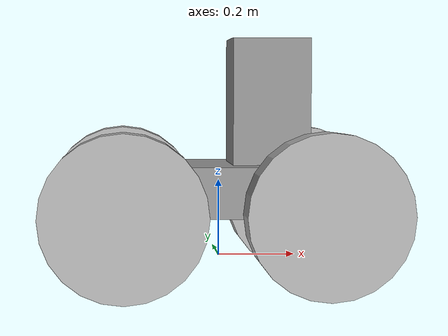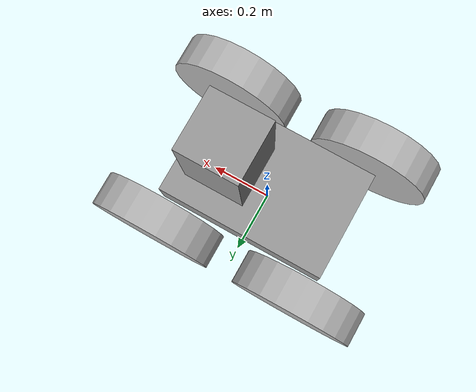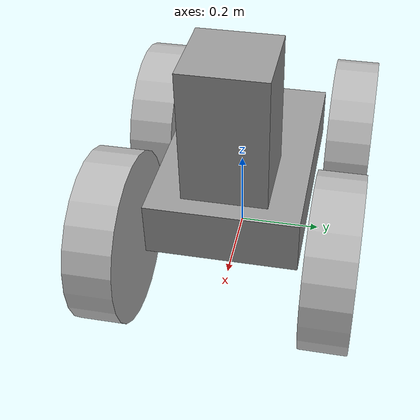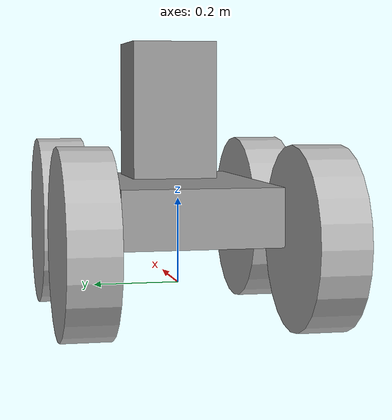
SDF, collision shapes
<?xml version="1.0"?>
<sdf version="1.6">
  <model name="coro_allie_sensor_config_1">
    <pose>0 0 0.1275 0 0 0</pose>
    <enable_wind>1</enable_wind>
    <link name="base_link">
      <inertial>
        <pose>0 0 0.09 0 0 0</pose>
        <mass>26.6</mass>
        <inertia>
          <ixx>0.387</ixx>
          <iyy>0.790</iyy>
          <izz>0.962</izz>
        </inertia>
      </inertial>

      <collision name="chassis_collision">
        <pose>0 0 0.05 0 0 0</pose>
        <geometry>
          <box>
            <size>0.555 0.355 0.13</size>
          </box>
        </geometry>
      </collision>
      <collision name="tower_collision">
        <pose>0.13 0 0.27 0 0 0</pose>
        <geometry>
          <box>
            <size>0.2 0.2 0.34</size>
          </box>
        </geometry>
      </collision>

      <visual name="chassis_main_visual">
        <pose>0 0 0.05 0 0 0</pose>
        <geometry>
          <box>
            <size>0.555 0.355 0.13</size>
          </box>
        </geometry>
        <material>
          <ambient>0.6 0.6 0.6 1.0</ambient>
          <diffuse>0.6 0.6 0.6 1.0</diffuse>
        </material>
      </visual>

      <visual name="emergency_stop_bottom_visual">
        <pose>0.2 0.15 0.125 0 0 0</pose>
        <geometry>
          <cylinder>
            <length>0.015</length>
            <radius>0.015</radius>
          </cylinder>
        </geometry>
        <material>
          <ambient>0.7059 0.7059 0.7059 1.0</ambient>
          <diffuse>0.7059 0.7059 0.7059 1.0</diffuse>
        </material>
      </visual>
      <visual name="emergency_stop_top_visual">
        <pose>0.2 0.15 0.135 0 0 0</pose>
        <geometry>
          <cylinder>
            <length>0.005</length>
            <radius>0.02</radius>
          </cylinder>
        </geometry>
        <material>
          <ambient>1.0 0.0 0.0 1.0</ambient>
          <diffuse>1.0 0.0 0.0 1.0</diffuse>
        </material>
      </visual>

      <visual name="wheel_mount_front_visual">
        <pose>0.249 0 0.011 0 0 0</pose>
        <geometry>
          <box>
            <size>0.05 0.5 0.05</size>
          </box>
        </geometry>
        <material>
          <ambient>0.6 0.6 0.6 1.0</ambient>
          <diffuse>0.6 0.6 0.6 1.0</diffuse>
        </material>
      </visual>
      <visual name="wheel_mount_rear_visual">
        <pose>-0.249 0 0.011 0 0 0</pose>
        <geometry>
          <box>
            <size>0.05 0.5 0.05</size>
          </box>
        </geometry>
        <material>
          <ambient>0.6 0.6 0.6 1.0</ambient>
          <diffuse>0.6 0.6 0.6 1.0</diffuse>
        </material>
      </visual>

      <visual name="plate1_visual">
        <pose>0.13 0 0.42 0 0 0</pose>
        <geometry>
          <box>
            <size>0.2 0.2 0.005</size>
          </box>
        </geometry>
        <material>
          <ambient>0.7843 0.7843 0.7843 1.0</ambient>
          <diffuse>0.7843 0.7843 0.7843 1.0</diffuse>
        </material>
      </visual>

      <visual name="plate2_visual">
        <pose>0.13 0 0.31 0 0 0</pose>
        <geometry>
          <box>
            <size>0.2 0.2 0.005</size>
          </box>
        </geometry>
        <material>
          <ambient>0.7843 0.7843 0.7843 1.0</ambient>
          <diffuse>0.7843 0.7843 0.7843 1.0</diffuse>
        </material>
      </visual>

      <visual name="plate3_visual">
        <pose>0.13 0 0.12 0 0 0</pose>
        <geometry>
          <box>
            <size>0.2 0.2 0.005</size>
          </box>
        </geometry>
        <material>
          <ambient>0.9412 0.9412 0.9412 1.0</ambient>
          <diffuse>0.9412 0.9412 0.9412 1.0</diffuse>
        </material>
      </visual>

      <visual name="beam1_visual">
        <pose>0.221 0.091 0.27 0 0 0</pose>
        <geometry>
          <box>
            <size>0.02 0.02 0.3</size>
          </box>
        </geometry>
        <material>
          <ambient>0.7843 0.7843 0.7843 1.0</ambient>
          <diffuse>0.7843 0.7843 0.7843 1.0</diffuse>
        </material>
      </visual>
      <visual name="beam2_visual">
        <pose>0.221 -0.091 0.27 0 0 0</pose>
        <geometry>
          <box>
            <size>0.02 0.02 0.3</size>
          </box>
        </geometry>
        <material>
          <ambient>0.7843 0.7843 0.7843 1.0</ambient>
          <diffuse>0.7843 0.7843 0.7843 1.0</diffuse>
        </material>
      </visual>
      <visual name="beam3_visual">
        <pose>0.039 0.091 0.27 0 0 0</pose>
        <geometry>
          <box>
            <size>0.02 0.02 0.3</size>
          </box>
        </geometry>
        <material>
          <ambient>0.7843 0.7843 0.7843 1.0</ambient>
          <diffuse>0.7843 0.7843 0.7843 1.0</diffuse>
        </material>
      </visual>
      <visual name="beam4_visual">
        <pose>0.039 -0.091 0.27 0 0 0</pose>
        <geometry>
          <box>
            <size>0.02 0.02 0.3</size>
          </box>
        </geometry>
        <material>
          <ambient>0.7843 0.7843 0.7843 1.0</ambient>
          <diffuse>0.7843 0.7843 0.7843 1.0</diffuse>
        </material>
      </visual>

      <visual name="d435i_realsense_camera_visual">
        <pose>0.19 0 0.393 0 0.52 0</pose>
        <geometry>
          <mesh>
            <scale>0.001 0.001 0.001</scale>
            <uri>../../meshes/allie/visual/realsense_d435.dae</uri>
          </mesh>
        </geometry>
      </visual>

      <visual name="vlp16_visual1">
        <pose>0.13 0 0.312 0 -0 0</pose>
        <geometry>
          <mesh>
            <scale>1 1 1</scale>
            <uri>../../meshes/allie/visual/VLP16_base_1.dae</uri>
          </mesh>
        </geometry>
      </visual>
      <visual name="vlp_visual2">
        <pose>0.13 0 0.312 0 -0 0</pose>
        <geometry>
          <mesh>
            <scale>1 1 1</scale>
            <uri>../../meshes/allie/visual/VLP16_base_2.dae</uri>
          </mesh>
        </geometry>
      </visual>
      <visual name="vlp_visual3">
        <pose>0.13 0 0.312 0 -0 0</pose>
        <geometry>
          <mesh>
            <scale>1 1 1</scale>
            <uri>../../meshes/allie/visual/VLP16_scan.dae</uri>
          </mesh>
        </geometry>
      </visual>

      <!-- MS-IMU3025 -->
      <sensor name="imu_sensor" type="imu">
        <always_on>1</always_on>
        <update_rate>50</update_rate>
        <imu>
                    <enable_orientation>0</enable_orientation>
                    <angular_velocity>
                        <x>
                            <noise type="gaussian">
                                <mean>0</mean>
                                <stddev>0.009</stddev>
                                <bias_mean>0.00075</bias_mean>
                                <bias_stddev>0.005</bias_stddev>
                                <dynamic_bias_stddev>0.00002</dynamic_bias_stddev>
                                <dynamic_bias_correlation_time>400.0</dynamic_bias_correlation_time>
                                <precision>0.00025</precision>
                            </noise>
                        </x>
                        <y>
                            <noise type="gaussian">
                                <mean>0</mean>
                                <stddev>0.009</stddev>
                                <bias_mean>0.00075</bias_mean>
                                <bias_stddev>0.005</bias_stddev>
                                <dynamic_bias_stddev>0.00002</dynamic_bias_stddev>
                                <dynamic_bias_correlation_time>400.0</dynamic_bias_correlation_time>
                                <precision>0.00025</precision>
                            </noise>
                        </y>
                        <z>
                            <noise type="gaussian">
                                <mean>0</mean>
                                <stddev>0.009</stddev>
                                <bias_mean>0.00075</bias_mean>
                                <bias_stddev>0.005</bias_stddev>
                                <dynamic_bias_stddev>0.00002</dynamic_bias_stddev>
                                <dynamic_bias_correlation_time>400.0</dynamic_bias_correlation_time>
                                <precision>0.00025</precision>
                            </noise>
                        </z>
                    </angular_velocity>
                    <linear_acceleration>
                        <x>
                            <noise type="gaussian">
                                <mean>0</mean>
                                <stddev>0.021</stddev>
                                <bias_mean>0.05</bias_mean>
                                <bias_stddev>0.0075</bias_stddev>
                                <dynamic_bias_stddev>0.000375</dynamic_bias_stddev>
                                <dynamic_bias_correlation_time>175.0</dynamic_bias_correlation_time>
                                <precision>0.005</precision>
                            </noise>
                        </x>
                        <y>
                            <noise type="gaussian">
                                <mean>0</mean>
                                <stddev>0.021</stddev>
                                <bias_mean>0.05</bias_mean>
                                <bias_stddev>0.0075</bias_stddev>
                                <dynamic_bias_stddev>0.000375</dynamic_bias_stddev>
                                <dynamic_bias_correlation_time>175.0</dynamic_bias_correlation_time>
                                <precision>0.005</precision>
                            </noise>
                        </y>
                        <z>
                            <noise type="gaussian">
                                <mean>0</mean>
                                <stddev>0.021</stddev>
                                <bias_mean>0.05</bias_mean>
                                <bias_stddev>0.0075</bias_stddev>
                                <dynamic_bias_stddev>0.000375</dynamic_bias_stddev>
                                <dynamic_bias_correlation_time>175.0</dynamic_bias_correlation_time>
                                <precision>0.005</precision>
                            </noise>
                        </z>
                    </linear_acceleration>
                </imu>
      </sensor>
      <!-- Based on Intel realsense D435 (intrinsics and distortion not modeled)-->
      <sensor name="rgbd_front" type="rgbd_camera">
        <pose>0.21 0 0.393 0 0.52 0</pose>
        <always_on>1</always_on>
        <update_rate>30</update_rate>
        <camera name="rgbd_front">
          <horizontal_fov>1.50098</horizontal_fov>
          <lens>
            <intrinsics>
              <!-- fx = fy = width / ( 2 * tan (hfov / 2 ) ) -->
              <fx>343.159</fx>
              <fy>343.159</fy>
              <!-- cx = ( width - 1 ) / 2 -->
              <cx>319.5</cx>
              <!-- cy = ( height - 1 ) / 2 -->
              <cy>179.5</cy>
              <s>0</s>
            </intrinsics>
          </lens>
          <distortion>
            <k1>0.0</k1>
            <k2>0.0</k2>
            <k3>0.0</k3>
            <p1>0.0</p1>
            <p2>0.0</p2>
            <center>0.5 0.5</center>
          </distortion>
          <image>
            <width>640</width>
            <height>360</height>
            <format>R8G8B8</format>
          </image>
          <clip>
            <near>0.01</near>
            <far>300</far>
          </clip>
          <depth_camera>
            <clip>
              <near>0.1</near>
              <far>10</far>
            </clip>
          </depth_camera>
          <noise>
            <type>gaussian</type>
            <mean>0</mean>
            <stddev>0.007</stddev>
          </noise>
        </camera>
      </sensor>
      <sensor name="front_laser" type="gpu_lidar">
        <visualize>0</visualize>
        <update_rate>10</update_rate>
        <lidar>
          <scan>
            <horizontal>
              <samples>1800</samples>
              <resolution>1</resolution>
              <min_angle>-3.1459</min_angle>
              <max_angle>3.1459</max_angle>
            </horizontal>
            <vertical>
              <samples>16</samples>
              <resolution>1</resolution>
              <min_angle>-0.261799</min_angle>
              <max_angle>0.261799</max_angle>
            </vertical>
          </scan>
          <range>
            <min>0.05</min>
            <max>100</max>
            <resolution>0.01</resolution>
          </range>
          <noise>
            <type>gaussian</type>
            <mean>0</mean>
            <stddev>0.01</stddev>
          </noise>
        </lidar>
        <pose frame="">0.13 0 0.35 0 -0 0</pose>
      </sensor>

      <visual name="light_front_visual">
        <pose>0.22 0 0.442 0 0 0</pose>
        <geometry>
          <box>
            <size>0.04 0.13 0.04</size>
          </box>
        </geometry>
        <material>
          <ambient>0.0 0.0 0.0 1.0</ambient>
          <diffuse>0.0 0.0 0.0 1.0</diffuse>
        </material>
      </visual>
      <light name="light_front" type="spot">
        <pose>0.25 0 0.44 0 -1.5707963267948966 0</pose>
        <attenuation>
          <range>25</range>
          <linear>0</linear>
          <constant>0.1</constant>
          <quadratic>0.005</quadratic>
        </attenuation>
        <diffuse>0.8 0.8 0.5 1.0</diffuse>
        <specular>0.8 0.8 0.5 1</specular>
        <spot>
          <inner_angle>1.571</inner_angle>
          <outer_angle>2.1</outer_angle>
          <falloff>1</falloff>
        </spot>
        <direction>1 0 0</direction>
        <cast_shadows>1</cast_shadows>
      </light>

      <visual name="light_rear_visual">
        <pose>0.04 0 0.44 0 0 0</pose>
        <geometry>
          <box>
            <size>0.04 0.12 0.04</size>
          </box>
        </geometry>
        <material>
          <ambient>0.0 0.0 0.0 1.0</ambient>
          <diffuse>0.0 0.0 0.0 1.0</diffuse>
        </material>
      </visual>
      <light name="light_rear" type="spot">
        <pose>0.01 0 0.442 0 1.5707963267948966 0</pose>
        <attenuation>
          <range>25</range>
          <linear>0</linear>
          <constant>0.1</constant>
          <quadratic>0.005</quadratic>
        </attenuation>
        <diffuse>0.8 0.8 0.5 1.0</diffuse>
        <specular>0.8 0.8 0.5 1</specular>
        <spot>
          <inner_angle>1.571</inner_angle>
          <outer_angle>2.1</outer_angle>
          <falloff>1</falloff>
        </spot>
        <direction>1 0 0</direction>
        <cast_shadows>1</cast_shadows>
      </light>

      <visual name="light_left_visual">
        <pose>0.13 0.09 0.442 0 0 0</pose>
        <geometry>
          <box>
            <size>0.12 0.04 0.04</size>
          </box>
        </geometry>
        <material>
          <ambient>0.0 0.0 0.0 1.0</ambient>
          <diffuse>0.0 0.0 0.0 1.0</diffuse>
        </material>
      </visual>
      <light name="light_left" type="spot">
        <pose>0.13 0.12 0.44 1.5707963267948966 0 0</pose>
        <attenuation>
          <range>25</range>
          <linear>0</linear>
          <constant>0.1</constant>
          <quadratic>0.005</quadratic>
        </attenuation>
        <diffuse>0.8 0.8 0.5 1.0</diffuse>
        <specular>0.8 0.8 0.5 1</specular>
        <spot>
          <inner_angle>1.571</inner_angle>
          <outer_angle>2.1</outer_angle>
          <falloff>1</falloff>
        </spot>
        <direction>1 0 0</direction>
        <cast_shadows>1</cast_shadows>
      </light>

      <visual name="light_right_visual">
        <pose>0.13 -0.09 0.442 0 0 0</pose>
        <geometry>
          <box>
            <size>0.12 0.04 0.04</size>
          </box>
        </geometry>
        <material>
          <ambient>0.0 0.0 0.0 1.0</ambient>
          <diffuse>0.0 0.0 0.0 1.0</diffuse>
        </material>
      </visual>
      <light name="light_right" type="spot">
        <pose>0.13 -0.12 0.44 -1.5707963267948966 0 0</pose>
        <attenuation>
          <range>25</range>
          <linear>0</linear>
          <constant>0.1</constant>
          <quadratic>0.005</quadratic>
        </attenuation>
        <diffuse>0.8 0.8 0.5 1.0</diffuse>
        <specular>0.8 0.8 0.5 1</specular>
        <spot>
          <inner_angle>1.571</inner_angle>
          <outer_angle>2.1</outer_angle>
          <falloff>1</falloff>
        </spot>
        <direction>1 0 0</direction>
        <cast_shadows>1</cast_shadows>
      </light>
    </link>

    <link name="front_left_wheel">
      <pose>0.25 0.255 0 0 0 0</pose>
      <inertial>
        <mass>5.124</mass>
        <inertia>
          <ixx>0.0576</ixx>
          <iyy>0.105</iyy>
          <izz>0.0576</izz>
        </inertia>
      </inertial>
      <collision name="front_left_wheel_collision">
        <pose>0 0 0 -1.5707963267948966 0 0</pose>
        <geometry>
          <cylinder>
            <length>0.11</length>
            <radius>0.205</radius>
          </cylinder>
        </geometry>
        <surface>
          <friction>
            <ode>
              <mu>0.5</mu>
              <mu2>1</mu2>
              <slip1>0.0016</slip1>
              <slip2>0</slip2>
              <fdir1>0 0 1</fdir1>
            </ode>
          </friction>
        </surface>
      </collision>
      <visual name="front_left_wheel_tire_visual">
        <pose>0 0 0 0 0 0</pose>
        <geometry>
          <mesh>
            <uri>../../meshes/allie/visual/wheel.dae</uri>
            <scale>1.18 1.0 1.18</scale>
          </mesh>
        </geometry>
      </visual>
    </link>

    <link name="front_right_wheel">
      <pose>0.25 -0.255 0 0 0 0</pose>
      <inertial>
        <mass>5.124</mass>
        <inertia>
          <ixx>0.0576</ixx>
          <iyy>0.105</iyy>
          <izz>0.0576</izz>
        </inertia>
      </inertial>
      <collision name="front_right_wheel_collision">
        <pose>0 0 0 1.5707963267948966 0 0</pose>
        <geometry>
          <cylinder>
            <length>0.11</length>
            <radius>0.205</radius>
          </cylinder>
        </geometry>
        <surface>
          <friction>
            <ode>
              <mu>0.5</mu>
              <mu2>1</mu2>
              <slip1>0.0016</slip1>
              <slip2>0</slip2>
              <fdir1>0 0 1</fdir1>
            </ode>
          </friction>
        </surface>
      </collision>
      <visual name="front_right_wheel_tire_visual">
        <pose>0 0 0 0 0 0</pose>
        <geometry>
          <mesh>
            <uri>../../meshes/allie/visual/wheel.dae</uri>
            <scale>1.18 1.0 1.18</scale>
          </mesh>
        </geometry>
      </visual>
    </link>

    <link name="rear_left_wheel">
      <pose>-0.25 0.255 0 0 0 0</pose>
      <inertial>
        <mass>5.124</mass>
        <inertia>
          <ixx>0.0576</ixx>
          <iyy>0.105</iyy>
          <izz>0.0576</izz>
        </inertia>
      </inertial>
      <collision name="rear_left_wheel_collision">
        <pose>0 0 0 -1.5707963267948966 0 0</pose>
        <geometry>
          <cylinder>
            <length>0.11</length>
            <radius>0.205</radius>
          </cylinder>
        </geometry>
        <surface>
          <friction>
            <ode>
              <mu>0.5</mu>
              <mu2>1</mu2>
              <slip1>0.0016</slip1>
              <slip2>0</slip2>
              <fdir1>0 0 1</fdir1>
            </ode>
          </friction>
        </surface>
      </collision>
      <visual name="rear_left_wheel_tire_visual">
        <pose>0 0 0 0 0 0</pose>
        <geometry>
          <mesh>
            <uri>../../meshes/allie/visual/wheel.dae</uri>
            <scale>1.18 1.0 1.18</scale>
          </mesh>
        </geometry>
      </visual>
    </link>

    <link name="rear_right_wheel">
      <pose>-0.25 -0.255 0 0 0 0</pose>
      <inertial>
        <mass>5.124</mass>
        <inertia>
          <ixx>0.0576</ixx>
          <iyy>0.105</iyy>
          <izz>0.0576</izz>
        </inertia>
      </inertial>
      <collision name="rear_right_wheel_collision">
        <pose>0 0 0 1.5707963267948966 0 0</pose>
        <geometry>
          <cylinder>
            <length>0.11</length>
            <radius>0.205</radius>
          </cylinder>
        </geometry>
        <surface>
          <friction>
            <ode>
              <mu>0.5</mu>
              <mu2>1</mu2>
              <slip1>0.0016</slip1>
              <slip2>0</slip2>
              <fdir1>0 0 1</fdir1>
            </ode>
          </friction>
        </surface>
      </collision>
      <visual name="rear_right_wheel_tire_visual">
        <pose>0 0 0 0 0 0</pose>
        <geometry>
          <mesh>
            <uri>../../meshes/allie/visual/wheel.dae</uri>
            <scale>1.18 1.0 1.18</scale>
          </mesh>
        </geometry>
      </visual>
    </link>

    <joint name="front_left_wheel_joint" type="revolute">
      <child>front_left_wheel</child>
      <parent>base_link</parent>
      <axis>
        <xyz>0 1 0</xyz>
        <limit>
          <lower>-1.79769e+308</lower>
          <upper>+1.79769e+308</upper>
          <!-- 2.8 m/s => angular velocity of the wheel in rad/s -->
          <velocity>13.65</velocity>
          <!-- Torque in NM. -->
          <effort>53.5</effort>
        </limit>
        <use_parent_model_frame>1</use_parent_model_frame>
      </axis>
    </joint>

    <joint name="rear_left_wheel_joint" type="revolute">
      <parent>base_link</parent>
      <child>rear_left_wheel</child>
      <axis>
        <xyz>0 1 0</xyz>
        <limit>
          <lower>-1.79769e+308</lower>
          <upper>+1.79769e+308</upper>
          <!-- 2.8 m/s => angular velocity of the wheel in rad/s -->
          <velocity>13.65</velocity>
          <!-- Torque in NM. -->
          <effort>53.5</effort>
        </limit>
      </axis>
    </joint>

    <joint name="rear_right_wheel_joint" type="revolute">
      <parent>base_link</parent>
      <child>rear_right_wheel</child>
      <axis>
        <xyz>0 1 0</xyz>
        <limit>
          <lower>-1.79769e+308</lower>
          <upper>+1.79769e+308</upper>
          <!-- 2.8 m/s => angular velocity of the wheel in rad/s -->
          <velocity>13.65</velocity>
          <!-- Torque in NM. -->
          <effort>53.5</effort>
        </limit>
      </axis>
    </joint>

    <joint name="front_right_wheel_joint" type="revolute">
      <parent>base_link</parent>
      <child>front_right_wheel</child>
      <axis>
        <xyz>0 1 0</xyz>
        <limit>
          <lower>-1.79769e+308</lower>
          <upper>+1.79769e+308</upper>
          <!-- 2.8 m/s => angular velocity of the wheel in rad/s -->
          <velocity>13.65</velocity>
          <!-- Torque in NM. -->
          <effort>53.5</effort>
        </limit>
      </axis>
    </joint>
  </model>
</sdf>
